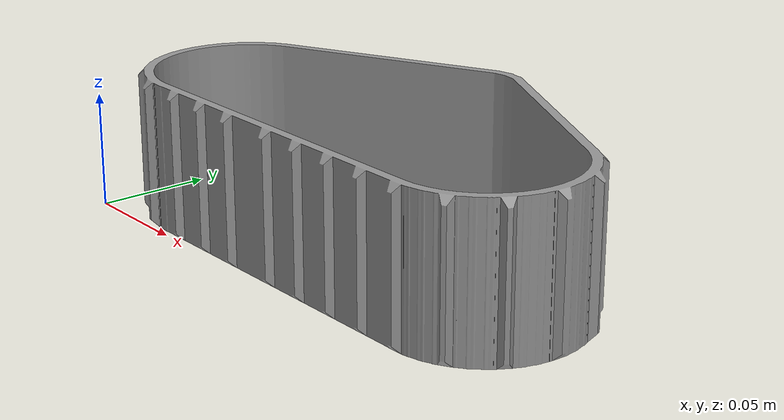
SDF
<?xml version='1.0'?>
<sdf version='1.5'>
  <model name='section_B_thread'>
    <link name='link_0'>
      <pose frame=''>-0 0 0 0 -0 0</pose>
      <gravity>1</gravity>
      <self_collide>1</self_collide>
      <kinematic>0</kinematic>
      <inertial>
        <mass>7</mass>
        <pose frame=''>0.125 0.06 0 0 -0 0</pose>
        <inertia>
          <ixx>1</ixx>
          <ixy>0</ixy>
          <ixz>0</ixz>
          <iyy>1</iyy>
          <iyz>0</iyz>
          <izz>1</izz>
        </inertia>
      </inertial>
      <visual name='visual'>
        <pose frame=''>0 0 0 0 -0 0</pose>
        <geometry>
          <mesh>
            <uri>model://section_B_thread/meshes/section_B_thread.STL</uri>
            <scale> 0.001 0.001 0.001 </scale>
          </mesh>
        </geometry>
        <material>
          <lighting>1</lighting>
          <script>
            <uri>file://media/materials/scripts/gazebo.material</uri>
            <name>Gazebo/Grey</name>
          </script>
          <ambient>0.3 0.3 0.3 1</ambient>
          <diffuse>0.7 0.7 0.7 1</diffuse>
          <specular>0.01 0.01 0.01 1</specular>
          <emissive>0 0 0 1</emissive>
          <shader type='pixel'/>
        </material>
        <cast_shadows>1</cast_shadows>
        <transparency>0</transparency>
      </visual>
      <collision name='collision'>
        <laser_retro>0</laser_retro>
        <max_contacts>50</max_contacts>
        <pose frame=''>0 0 0 0 -0 0</pose>
        <geometry>
          <mesh>
            <uri>model://section_B_thread/meshes/section_B_thread.STL</uri>
            <scale> 0.001 0.001 0.001 </scale>
          </mesh>
        </geometry>
        <surface>
          <friction>
            <ode>
              <mu>1</mu>
              <mu2>1</mu2>
              <fdir1>0 0 0</fdir1>
              <slip1>0</slip1>
              <slip2>0</slip2>
            </ode>
          </friction>
          <bounce>
            <restitution_coefficient>0</restitution_coefficient>
            <threshold>1e+06</threshold>
          </bounce>
          <contact>
            <collide_without_contact>0</collide_without_contact>
            <collide_without_contact_bitmask>1</collide_without_contact_bitmask>
            <collide_bitmask>1</collide_bitmask>
            <poissons_ratio>0.35</poissons_ratio>
            <elastic_modulus>1e8</elastic_modulus>
            <ode>
              <soft_cfm>1</soft_cfm>
              <soft_erp>1</soft_erp>
              <kp>1e+13</kp>
              <kd>1</kd>
              <max_vel>0.01</max_vel>
              <min_depth>0</min_depth>
            </ode>
            <bullet>
              <split_impulse>1</split_impulse>
              <split_impulse_penetration_threshold>-0.01</split_impulse_penetration_threshold>
              <soft_cfm>0</soft_cfm>
              <soft_erp>0.2</soft_erp>
              <kp>1e+13</kp>
              <kd>1</kd>
            </bullet>
          </contact>
        </surface>
      </collision>
    </link>
    <static>0</static>
    <allow_auto_disable>1</allow_auto_disable>
  </model>
</sdf>
